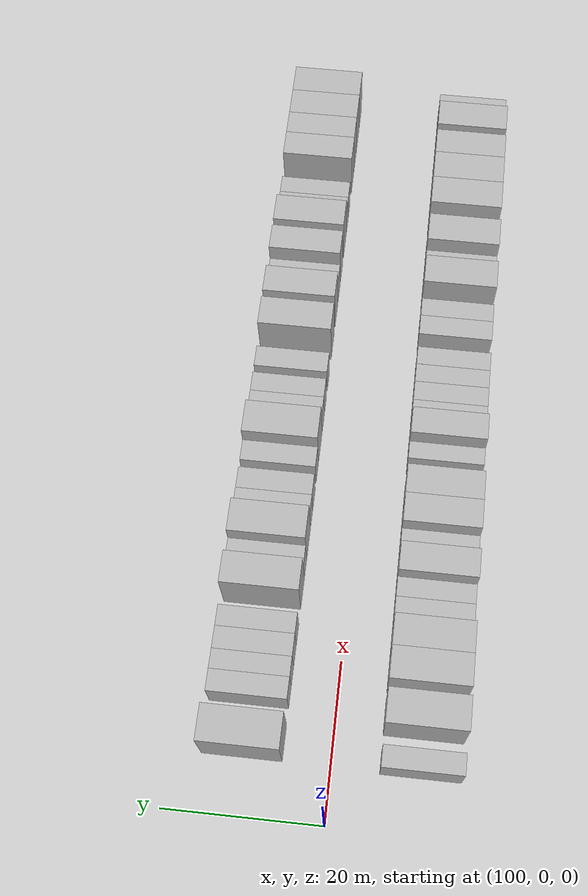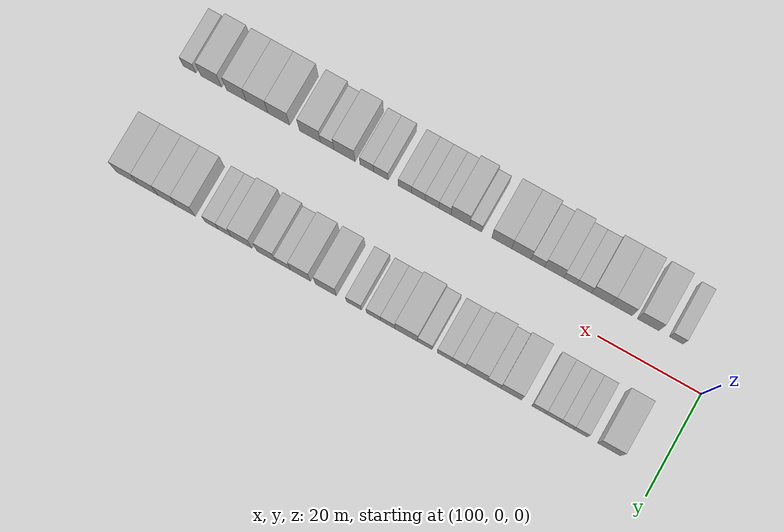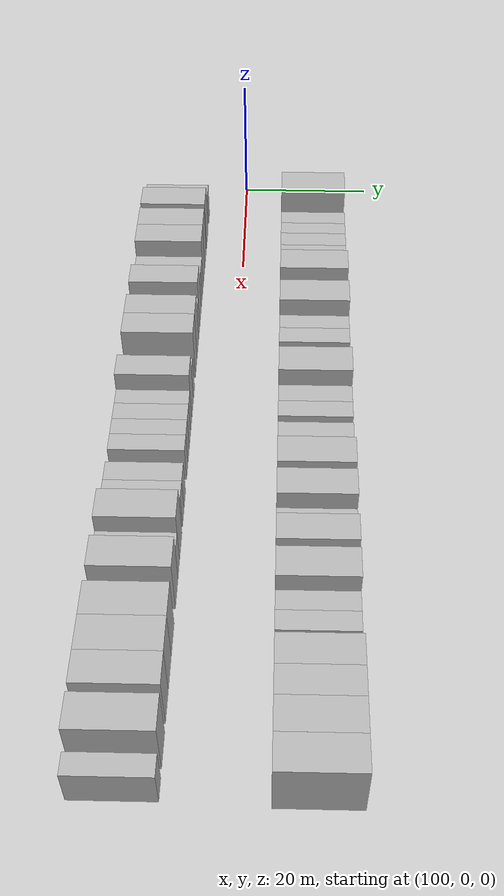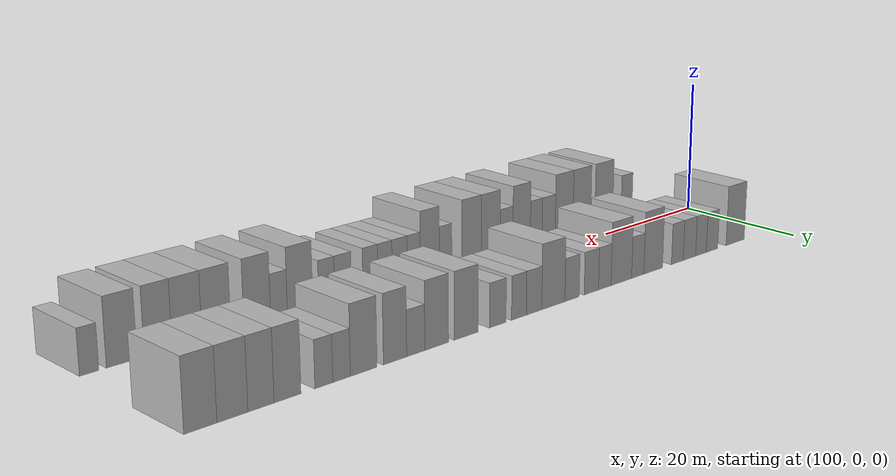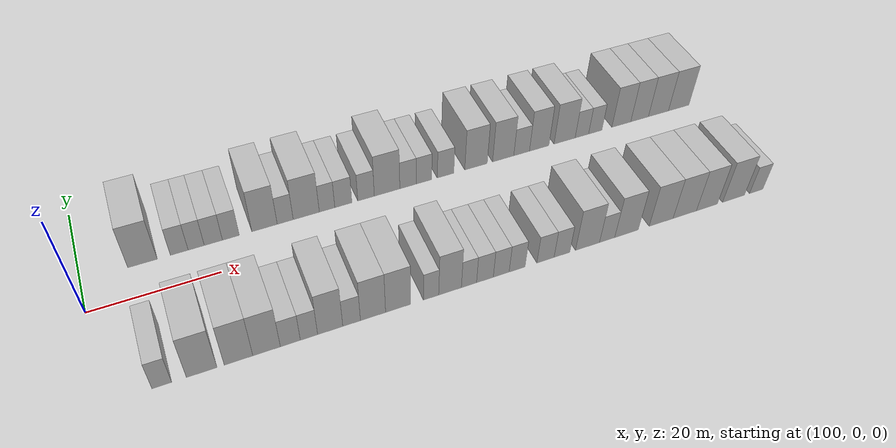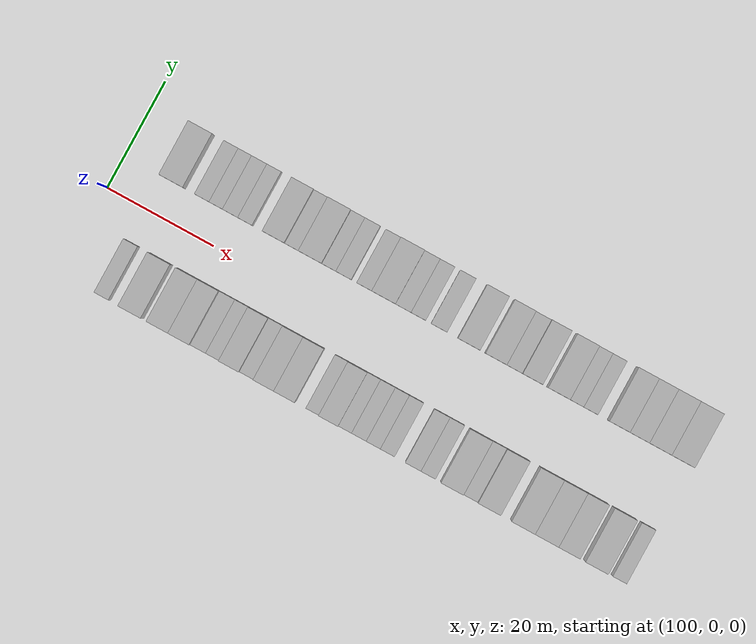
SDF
<sdf version="1.6">
 <world name="default">
  <model name="building_27">
   <static>1</static>
   <pose>109.2187 11.0000 0 0.000000 0.000000 1.570796</pose>
   <link name="link">
    <pose>0 0 4.50 0 0 0</pose>
    <collision name="collision"><geometry><box><size>10.0000 4.4427 9.0000</size></box></geometry></collision>
    <visual name="visual">
     <cast_shadows>0</cast_shadows>
     <geometry><box><size>10.0000 4.4427 9.0000</size></box></geometry>
     <material>
      <script>
       <uri>model://HANNAS_wall/materials/scripts</uri>
       <uri>model://HANNAS_wall/materials/textures</uri>
       <name>vrc/HANNAS_wall</name>
      </script>
     </material>
    </visual>
   </link>
  </model>
  <model name="building_28">
   <static>1</static>
   <pose>114.8032 11.0000 0 0.000000 0.000000 1.570796</pose>
   <link name="link">
    <pose>0 0 3.00 0 0 0</pose>
    <collision name="collision"><geometry><box><size>10.0000 2.7262 6.0000</size></box></geometry></collision>
    <visual name="visual">
     <cast_shadows>0</cast_shadows>
     <geometry><box><size>10.0000 2.7262 6.0000</size></box></geometry>
     <material>
      <script>
       <uri>model://HANNAS_wall/materials/scripts</uri>
       <uri>model://HANNAS_wall/materials/textures</uri>
       <name>vrc/HANNAS_wall</name>
      </script>
     </material>
    </visual>
   </link>
  </model>
  <model name="building_29">
   <static>1</static>
   <pose>117.4157 11.0000 0 0.000000 0.000000 1.570796</pose>
   <link name="link">
    <pose>0 0 3.00 0 0 0</pose>
    <collision name="collision"><geometry><box><size>10.0000 2.4989 6.0000</size></box></geometry></collision>
    <visual name="visual">
     <cast_shadows>0</cast_shadows>
     <geometry><box><size>10.0000 2.4989 6.0000</size></box></geometry>
     <material>
      <script>
       <uri>model://HANNAS_wall/materials/scripts</uri>
       <uri>model://HANNAS_wall/materials/textures</uri>
       <name>vrc/HANNAS_wall</name>
      </script>
     </material>
    </visual>
   </link>
  </model>
  <model name="building_30">
   <static>1</static>
   <pose>120.0866 11.0000 0 0.000000 0.000000 1.570796</pose>
   <link name="link">
    <pose>0 0 3.00 0 0 0</pose>
    <collision name="collision"><geometry><box><size>10.0000 2.8430 6.0000</size></box></geometry></collision>
    <visual name="visual">
     <cast_shadows>0</cast_shadows>
     <geometry><box><size>10.0000 2.8430 6.0000</size></box></geometry>
     <material>
      <script>
       <uri>model://HANNAS_wall/materials/scripts</uri>
       <uri>model://HANNAS_wall/materials/textures</uri>
       <name>vrc/HANNAS_wall</name>
      </script>
     </material>
    </visual>
   </link>
  </model>
  <model name="building_31">
   <static>1</static>
   <pose>122.8462 11.0000 0 0.000000 0.000000 1.570796</pose>
   <link name="link">
    <pose>0 0 3.00 0 0 0</pose>
    <collision name="collision"><geometry><box><size>10.0000 2.6762 6.0000</size></box></geometry></collision>
    <visual name="visual">
     <cast_shadows>0</cast_shadows>
     <geometry><box><size>10.0000 2.6762 6.0000</size></box></geometry>
     <material>
      <script>
       <uri>model://HANNAS_wall/materials/scripts</uri>
       <uri>model://HANNAS_wall/materials/textures</uri>
       <name>vrc/HANNAS_wall</name>
      </script>
     </material>
    </visual>
   </link>
  </model>
  <model name="building_32">
   <static>1</static>
   <pose>128.2343 11.0000 0 0.000000 0.000000 1.570796</pose>
   <link name="link">
    <pose>0 0 4.50 0 0 0</pose>
    <collision name="collision"><geometry><box><size>10.0000 4.0998 9.0000</size></box></geometry></collision>
    <visual name="visual">
     <cast_shadows>0</cast_shadows>
     <geometry><box><size>10.0000 4.0998 9.0000</size></box></geometry>
     <material>
      <script>
       <uri>model://HANNAS_wall/materials/scripts</uri>
       <uri>model://HANNAS_wall/materials/textures</uri>
       <name>vrc/HANNAS_wall</name>
      </script>
     </material>
    </visual>
   </link>
  </model>
  <model name="building_33">
   <static>1</static>
   <pose>131.5892 11.0000 0 0.000000 0.000000 1.570796</pose>
   <link name="link">
    <pose>0 0 3.00 0 0 0</pose>
    <collision name="collision"><geometry><box><size>10.0000 2.6101 6.0000</size></box></geometry></collision>
    <visual name="visual">
     <cast_shadows>0</cast_shadows>
     <geometry><box><size>10.0000 2.6101 6.0000</size></box></geometry>
     <material>
      <script>
       <uri>model://HANNAS_wall/materials/scripts</uri>
       <uri>model://HANNAS_wall/materials/textures</uri>
       <name>vrc/HANNAS_wall</name>
      </script>
     </material>
    </visual>
   </link>
  </model>
  <model name="building_34">
   <static>1</static>
   <pose>135.0570 11.0000 0 0.000000 0.000000 1.570796</pose>
   <link name="link">
    <pose>0 0 4.50 0 0 0</pose>
    <collision name="collision"><geometry><box><size>10.0000 4.3254 9.0000</size></box></geometry></collision>
    <visual name="visual">
     <cast_shadows>0</cast_shadows>
     <geometry><box><size>10.0000 4.3254 9.0000</size></box></geometry>
     <material>
      <script>
       <uri>model://HANNAS_wall/materials/scripts</uri>
       <uri>model://HANNAS_wall/materials/textures</uri>
       <name>vrc/HANNAS_wall</name>
      </script>
     </material>
    </visual>
   </link>
  </model>
  <model name="building_35">
   <static>1</static>
   <pose>138.5152 11.0000 0 0.000000 0.000000 1.570796</pose>
   <link name="link">
    <pose>0 0 3.00 0 0 0</pose>
    <collision name="collision"><geometry><box><size>10.0000 2.5910 6.0000</size></box></geometry></collision>
    <visual name="visual">
     <cast_shadows>0</cast_shadows>
     <geometry><box><size>10.0000 2.5910 6.0000</size></box></geometry>
     <material>
      <script>
       <uri>model://HANNAS_wall/materials/scripts</uri>
       <uri>model://HANNAS_wall/materials/textures</uri>
       <name>vrc/HANNAS_wall</name>
      </script>
     </material>
    </visual>
   </link>
  </model>
  <model name="building_36">
   <static>1</static>
   <pose>141.2565 11.0000 0 0.000000 0.000000 1.570796</pose>
   <link name="link">
    <pose>0 0 3.00 0 0 0</pose>
    <collision name="collision"><geometry><box><size>10.0000 2.8916 6.0000</size></box></geometry></collision>
    <visual name="visual">
     <cast_shadows>0</cast_shadows>
     <geometry><box><size>10.0000 2.8916 6.0000</size></box></geometry>
     <material>
      <script>
       <uri>model://HANNAS_wall/materials/scripts</uri>
       <uri>model://HANNAS_wall/materials/textures</uri>
       <name>vrc/HANNAS_wall</name>
      </script>
     </material>
    </visual>
   </link>
  </model>
  <model name="building_37">
   <static>1</static>
   <pose>145.1205 11.0000 0 0.000000 0.000000 1.570796</pose>
   <link name="link">
    <pose>0 0 3.00 0 0 0</pose>
    <collision name="collision"><geometry><box><size>10.0000 2.8364 6.0000</size></box></geometry></collision>
    <visual name="visual">
     <cast_shadows>0</cast_shadows>
     <geometry><box><size>10.0000 2.8364 6.0000</size></box></geometry>
     <material>
      <script>
       <uri>model://HANNAS_wall/materials/scripts</uri>
       <uri>model://HANNAS_wall/materials/textures</uri>
       <name>vrc/HANNAS_wall</name>
      </script>
     </material>
    </visual>
   </link>
  </model>
  <model name="building_38">
   <static>1</static>
   <pose>148.7555 11.0000 0 0.000000 0.000000 1.570796</pose>
   <link name="link">
    <pose>0 0 4.50 0 0 0</pose>
    <collision name="collision"><geometry><box><size>10.0000 4.4335 9.0000</size></box></geometry></collision>
    <visual name="visual">
     <cast_shadows>0</cast_shadows>
     <geometry><box><size>10.0000 4.4335 9.0000</size></box></geometry>
     <material>
      <script>
       <uri>model://HANNAS_wall/materials/scripts</uri>
       <uri>model://HANNAS_wall/materials/textures</uri>
       <name>vrc/HANNAS_wall</name>
      </script>
     </material>
    </visual>
   </link>
  </model>
  <model name="building_39">
   <static>1</static>
   <pose>152.4160 11.0000 0 0.000000 0.000000 1.570796</pose>
   <link name="link">
    <pose>0 0 3.00 0 0 0</pose>
    <collision name="collision"><geometry><box><size>10.0000 2.8877 6.0000</size></box></geometry></collision>
    <visual name="visual">
     <cast_shadows>0</cast_shadows>
     <geometry><box><size>10.0000 2.8877 6.0000</size></box></geometry>
     <material>
      <script>
       <uri>model://HANNAS_wall/materials/scripts</uri>
       <uri>model://HANNAS_wall/materials/textures</uri>
       <name>vrc/HANNAS_wall</name>
      </script>
     </material>
    </visual>
   </link>
  </model>
  <model name="building_40">
   <static>1</static>
   <pose>155.2328 11.0000 0 0.000000 0.000000 1.570796</pose>
   <link name="link">
    <pose>0 0 3.00 0 0 0</pose>
    <collision name="collision"><geometry><box><size>10.0000 2.7458 6.0000</size></box></geometry></collision>
    <visual name="visual">
     <cast_shadows>0</cast_shadows>
     <geometry><box><size>10.0000 2.7458 6.0000</size></box></geometry>
     <material>
      <script>
       <uri>model://HANNAS_wall/materials/scripts</uri>
       <uri>model://HANNAS_wall/materials/textures</uri>
       <name>vrc/HANNAS_wall</name>
      </script>
     </material>
    </visual>
   </link>
  </model>
  <model name="building_41">
   <static>1</static>
   <pose>159.0958 11.0000 0 0.000000 0.000000 1.570796</pose>
   <link name="link">
    <pose>0 0 3.00 0 0 0</pose>
    <collision name="collision"><geometry><box><size>10.0000 2.9803 6.0000</size></box></geometry></collision>
    <visual name="visual">
     <cast_shadows>0</cast_shadows>
     <geometry><box><size>10.0000 2.9803 6.0000</size></box></geometry>
     <material>
      <script>
       <uri>model://HANNAS_wall/materials/scripts</uri>
       <uri>model://HANNAS_wall/materials/textures</uri>
       <name>vrc/HANNAS_wall</name>
      </script>
     </material>
    </visual>
   </link>
  </model>
  <model name="building_42">
   <static>1</static>
   <pose>164.6466 11.0000 0 0.000000 0.000000 1.570796</pose>
   <link name="link">
    <pose>0 0 4.50 0 0 0</pose>
    <collision name="collision"><geometry><box><size>10.0000 4.1212 9.0000</size></box></geometry></collision>
    <visual name="visual">
     <cast_shadows>0</cast_shadows>
     <geometry><box><size>10.0000 4.1212 9.0000</size></box></geometry>
     <material>
      <script>
       <uri>model://HANNAS_wall/materials/scripts</uri>
       <uri>model://HANNAS_wall/materials/textures</uri>
       <name>vrc/HANNAS_wall</name>
      </script>
     </material>
    </visual>
   </link>
  </model>
  <model name="building_43">
   <static>1</static>
   <pose>169.6876 11.0000 0 0.000000 0.000000 1.570796</pose>
   <link name="link">
    <pose>0 0 4.50 0 0 0</pose>
    <collision name="collision"><geometry><box><size>10.0000 3.9610 9.0000</size></box></geometry></collision>
    <visual name="visual">
     <cast_shadows>0</cast_shadows>
     <geometry><box><size>10.0000 3.9610 9.0000</size></box></geometry>
     <material>
      <script>
       <uri>model://HANNAS_wall/materials/scripts</uri>
       <uri>model://HANNAS_wall/materials/textures</uri>
       <name>vrc/HANNAS_wall</name>
      </script>
     </material>
    </visual>
   </link>
  </model>
  <model name="building_44">
   <static>1</static>
   <pose>173.1504 11.0000 0 0.000000 0.000000 1.570796</pose>
   <link name="link">
    <pose>0 0 3.00 0 0 0</pose>
    <collision name="collision"><geometry><box><size>10.0000 2.9644 6.0000</size></box></geometry></collision>
    <visual name="visual">
     <cast_shadows>0</cast_shadows>
     <geometry><box><size>10.0000 2.9644 6.0000</size></box></geometry>
     <material>
      <script>
       <uri>model://HANNAS_wall/materials/scripts</uri>
       <uri>model://HANNAS_wall/materials/textures</uri>
       <name>vrc/HANNAS_wall</name>
      </script>
     </material>
    </visual>
   </link>
  </model>
  <model name="building_45">
   <static>1</static>
   <pose>176.4920 11.0000 0 0.000000 0.000000 1.570796</pose>
   <link name="link">
    <pose>0 0 4.50 0 0 0</pose>
    <collision name="collision"><geometry><box><size>10.0000 3.7188 9.0000</size></box></geometry></collision>
    <visual name="visual">
     <cast_shadows>0</cast_shadows>
     <geometry><box><size>10.0000 3.7188 9.0000</size></box></geometry>
     <material>
      <script>
       <uri>model://HANNAS_wall/materials/scripts</uri>
       <uri>model://HANNAS_wall/materials/textures</uri>
       <name>vrc/HANNAS_wall</name>
      </script>
     </material>
    </visual>
   </link>
  </model>
  <model name="building_46">
   <static>1</static>
   <pose>181.4032 11.0000 0 0.000000 0.000000 1.570796</pose>
   <link name="link">
    <pose>0 0 4.50 0 0 0</pose>
    <collision name="collision"><geometry><box><size>10.0000 4.1037 9.0000</size></box></geometry></collision>
    <visual name="visual">
     <cast_shadows>0</cast_shadows>
     <geometry><box><size>10.0000 4.1037 9.0000</size></box></geometry>
     <material>
      <script>
       <uri>model://HANNAS_wall/materials/scripts</uri>
       <uri>model://HANNAS_wall/materials/textures</uri>
       <name>vrc/HANNAS_wall</name>
      </script>
     </material>
    </visual>
   </link>
  </model>
  <model name="building_47">
   <static>1</static>
   <pose>184.7760 11.0000 0 0.000000 0.000000 1.570796</pose>
   <link name="link">
    <pose>0 0 3.00 0 0 0</pose>
    <collision name="collision"><geometry><box><size>10.0000 2.6418 6.0000</size></box></geometry></collision>
    <visual name="visual">
     <cast_shadows>0</cast_shadows>
     <geometry><box><size>10.0000 2.6418 6.0000</size></box></geometry>
     <material>
      <script>
       <uri>model://HANNAS_wall/materials/scripts</uri>
       <uri>model://HANNAS_wall/materials/textures</uri>
       <name>vrc/HANNAS_wall</name>
      </script>
     </material>
    </visual>
   </link>
  </model>
  <model name="building_48">
   <static>1</static>
   <pose>187.4172 11.0000 0 0.000000 0.000000 1.570796</pose>
   <link name="link">
    <pose>0 0 3.00 0 0 0</pose>
    <collision name="collision"><geometry><box><size>10.0000 2.6407 6.0000</size></box></geometry></collision>
    <visual name="visual">
     <cast_shadows>0</cast_shadows>
     <geometry><box><size>10.0000 2.6407 6.0000</size></box></geometry>
     <material>
      <script>
       <uri>model://HANNAS_wall/materials/scripts</uri>
       <uri>model://HANNAS_wall/materials/textures</uri>
       <name>vrc/HANNAS_wall</name>
      </script>
     </material>
    </visual>
   </link>
  </model>
  <model name="building_49">
   <static>1</static>
   <pose>192.6447 11.0000 0 0.000000 0.000000 1.570796</pose>
   <link name="link">
    <pose>0 0 4.50 0 0 0</pose>
    <collision name="collision"><geometry><box><size>10.0000 3.8143 9.0000</size></box></geometry></collision>
    <visual name="visual">
     <cast_shadows>0</cast_shadows>
     <geometry><box><size>10.0000 3.8143 9.0000</size></box></geometry>
     <material>
      <script>
       <uri>model://HANNAS_wall/materials/scripts</uri>
       <uri>model://HANNAS_wall/materials/textures</uri>
       <name>vrc/HANNAS_wall</name>
      </script>
     </material>
    </visual>
   </link>
  </model>
  <model name="building_50">
   <static>1</static>
   <pose>196.3565 11.0000 0 0.000000 0.000000 1.570796</pose>
   <link name="link">
    <pose>0 0 4.50 0 0 0</pose>
    <collision name="collision"><geometry><box><size>10.0000 3.6092 9.0000</size></box></geometry></collision>
    <visual name="visual">
     <cast_shadows>0</cast_shadows>
     <geometry><box><size>10.0000 3.6092 9.0000</size></box></geometry>
     <material>
      <script>
       <uri>model://HANNAS_wall/materials/scripts</uri>
       <uri>model://HANNAS_wall/materials/textures</uri>
       <name>vrc/HANNAS_wall</name>
      </script>
     </material>
    </visual>
   </link>
  </model>
  <model name="building_51">
   <static>1</static>
   <pose>200.2286 11.0000 0 0.000000 0.000000 1.570796</pose>
   <link name="link">
    <pose>0 0 4.50 0 0 0</pose>
    <collision name="collision"><geometry><box><size>10.0000 4.1352 9.0000</size></box></geometry></collision>
    <visual name="visual">
     <cast_shadows>0</cast_shadows>
     <geometry><box><size>10.0000 4.1352 9.0000</size></box></geometry>
     <material>
      <script>
       <uri>model://HANNAS_wall/materials/scripts</uri>
       <uri>model://HANNAS_wall/materials/textures</uri>
       <name>vrc/HANNAS_wall</name>
      </script>
     </material>
    </visual>
   </link>
  </model>
  <model name="building_52">
   <static>1</static>
   <pose>204.4438 11.0000 0 0.000000 0.000000 1.570796</pose>
   <link name="link">
    <pose>0 0 4.50 0 0 0</pose>
    <collision name="collision"><geometry><box><size>10.0000 4.2951 9.0000</size></box></geometry></collision>
    <visual name="visual">
     <cast_shadows>0</cast_shadows>
     <geometry><box><size>10.0000 4.2951 9.0000</size></box></geometry>
     <material>
      <script>
       <uri>model://HANNAS_wall/materials/scripts</uri>
       <uri>model://HANNAS_wall/materials/textures</uri>
       <name>vrc/HANNAS_wall</name>
      </script>
     </material>
    </visual>
   </link>
  </model>
  <model name="building_78">
   <static>1</static>
   <pose>108.0930 -11.0000 0 0.000000 0.000000 1.570796</pose>
   <link name="link">
    <pose>0 0 3.00 0 0 0</pose>
    <collision name="collision"><geometry><box><size>10.0000 2.6696 6.0000</size></box></geometry></collision>
    <visual name="visual">
     <cast_shadows>0</cast_shadows>
     <geometry><box><size>10.0000 2.6696 6.0000</size></box></geometry>
     <material>
      <script>
       <uri>model://HANNAS_wall/materials/scripts</uri>
       <uri>model://HANNAS_wall/materials/textures</uri>
       <name>vrc/HANNAS_wall</name>
      </script>
     </material>
    </visual>
   </link>
  </model>
  <model name="building_79">
   <static>1</static>
   <pose>113.5479 -11.0000 0 0.000000 0.000000 1.570796</pose>
   <link name="link">
    <pose>0 0 4.50 0 0 0</pose>
    <collision name="collision"><geometry><box><size>10.0000 4.2402 9.0000</size></box></geometry></collision>
    <visual name="visual">
     <cast_shadows>0</cast_shadows>
     <geometry><box><size>10.0000 4.2402 9.0000</size></box></geometry>
     <material>
      <script>
       <uri>model://HANNAS_wall/materials/scripts</uri>
       <uri>model://HANNAS_wall/materials/textures</uri>
       <name>vrc/HANNAS_wall</name>
      </script>
     </material>
    </visual>
   </link>
  </model>
  <model name="building_80">
   <static>1</static>
   <pose>118.6877 -11.0000 0 0.000000 0.000000 1.570796</pose>
   <link name="link">
    <pose>0 0 4.50 0 0 0</pose>
    <collision name="collision"><geometry><box><size>10.0000 4.0394 9.0000</size></box></geometry></collision>
    <visual name="visual">
     <cast_shadows>0</cast_shadows>
     <geometry><box><size>10.0000 4.0394 9.0000</size></box></geometry>
     <material>
      <script>
       <uri>model://HANNAS_wall/materials/scripts</uri>
       <uri>model://HANNAS_wall/materials/textures</uri>
       <name>vrc/HANNAS_wall</name>
      </script>
     </material>
    </visual>
   </link>
  </model>
  <model name="building_81">
   <static>1</static>
   <pose>122.6841 -11.0000 0 0.000000 0.000000 1.570796</pose>
   <link name="link">
    <pose>0 0 4.50 0 0 0</pose>
    <collision name="collision"><geometry><box><size>10.0000 3.9535 9.0000</size></box></geometry></collision>
    <visual name="visual">
     <cast_shadows>0</cast_shadows>
     <geometry><box><size>10.0000 3.9535 9.0000</size></box></geometry>
     <material>
      <script>
       <uri>model://HANNAS_wall/materials/scripts</uri>
       <uri>model://HANNAS_wall/materials/textures</uri>
       <name>vrc/HANNAS_wall</name>
      </script>
     </material>
    </visual>
   </link>
  </model>
  <model name="building_82">
   <static>1</static>
   <pose>126.1131 -11.0000 0 0.000000 0.000000 1.570796</pose>
   <link name="link">
    <pose>0 0 3.00 0 0 0</pose>
    <collision name="collision"><geometry><box><size>10.0000 2.9044 6.0000</size></box></geometry></collision>
    <visual name="visual">
     <cast_shadows>0</cast_shadows>
     <geometry><box><size>10.0000 2.9044 6.0000</size></box></geometry>
     <material>
      <script>
       <uri>model://HANNAS_wall/materials/scripts</uri>
       <uri>model://HANNAS_wall/materials/textures</uri>
       <name>vrc/HANNAS_wall</name>
      </script>
     </material>
    </visual>
   </link>
  </model>
  <model name="building_83">
   <static>1</static>
   <pose>128.8361 -11.0000 0 0.000000 0.000000 1.570796</pose>
   <link name="link">
    <pose>0 0 3.00 0 0 0</pose>
    <collision name="collision"><geometry><box><size>10.0000 2.5417 6.0000</size></box></geometry></collision>
    <visual name="visual">
     <cast_shadows>0</cast_shadows>
     <geometry><box><size>10.0000 2.5417 6.0000</size></box></geometry>
     <material>
      <script>
       <uri>model://HANNAS_wall/materials/scripts</uri>
       <uri>model://HANNAS_wall/materials/textures</uri>
       <name>vrc/HANNAS_wall</name>
      </script>
     </material>
    </visual>
   </link>
  </model>
  <model name="building_84">
   <static>1</static>
   <pose>131.9829 -11.0000 0 0.000000 0.000000 1.570796</pose>
   <link name="link">
    <pose>0 0 4.50 0 0 0</pose>
    <collision name="collision"><geometry><box><size>10.0000 3.7520 9.0000</size></box></geometry></collision>
    <visual name="visual">
     <cast_shadows>0</cast_shadows>
     <geometry><box><size>10.0000 3.7520 9.0000</size></box></geometry>
     <material>
      <script>
       <uri>model://HANNAS_wall/materials/scripts</uri>
       <uri>model://HANNAS_wall/materials/textures</uri>
       <name>vrc/HANNAS_wall</name>
      </script>
     </material>
    </visual>
   </link>
  </model>
  <model name="building_85">
   <static>1</static>
   <pose>135.1890 -11.0000 0 0.000000 0.000000 1.570796</pose>
   <link name="link">
    <pose>0 0 3.00 0 0 0</pose>
    <collision name="collision"><geometry><box><size>10.0000 2.6601 6.0000</size></box></geometry></collision>
    <visual name="visual">
     <cast_shadows>0</cast_shadows>
     <geometry><box><size>10.0000 2.6601 6.0000</size></box></geometry>
     <material>
      <script>
       <uri>model://HANNAS_wall/materials/scripts</uri>
       <uri>model://HANNAS_wall/materials/textures</uri>
       <name>vrc/HANNAS_wall</name>
      </script>
     </material>
    </visual>
   </link>
  </model>
  <model name="building_86">
   <static>1</static>
   <pose>138.4405 -11.0000 0 0.000000 0.000000 1.570796</pose>
   <link name="link">
    <pose>0 0 4.50 0 0 0</pose>
    <collision name="collision"><geometry><box><size>10.0000 3.8428 9.0000</size></box></geometry></collision>
    <visual name="visual">
     <cast_shadows>0</cast_shadows>
     <geometry><box><size>10.0000 3.8428 9.0000</size></box></geometry>
     <material>
      <script>
       <uri>model://HANNAS_wall/materials/scripts</uri>
       <uri>model://HANNAS_wall/materials/textures</uri>
       <name>vrc/HANNAS_wall</name>
      </script>
     </material>
    </visual>
   </link>
  </model>
  <model name="building_87">
   <static>1</static>
   <pose>142.3143 -11.0000 0 0.000000 0.000000 1.570796</pose>
   <link name="link">
    <pose>0 0 4.50 0 0 0</pose>
    <collision name="collision"><geometry><box><size>10.0000 3.9048 9.0000</size></box></geometry></collision>
    <visual name="visual">
     <cast_shadows>0</cast_shadows>
     <geometry><box><size>10.0000 3.9048 9.0000</size></box></geometry>
     <material>
      <script>
       <uri>model://HANNAS_wall/materials/scripts</uri>
       <uri>model://HANNAS_wall/materials/textures</uri>
       <name>vrc/HANNAS_wall</name>
      </script>
     </material>
    </visual>
   </link>
  </model>
  <model name="building_88">
   <static>1</static>
   <pose>147.4749 -11.0000 0 0.000000 0.000000 1.570796</pose>
   <link name="link">
    <pose>0 0 3.00 0 0 0</pose>
    <collision name="collision"><geometry><box><size>10.0000 2.4166 6.0000</size></box></geometry></collision>
    <visual name="visual">
     <cast_shadows>0</cast_shadows>
     <geometry><box><size>10.0000 2.4166 6.0000</size></box></geometry>
     <material>
      <script>
       <uri>model://HANNAS_wall/materials/scripts</uri>
       <uri>model://HANNAS_wall/materials/textures</uri>
       <name>vrc/HANNAS_wall</name>
      </script>
     </material>
    </visual>
   </link>
  </model>
  <model name="building_89">
   <static>1</static>
   <pose>150.5029 -11.0000 0 0.000000 0.000000 1.570796</pose>
   <link name="link">
    <pose>0 0 4.50 0 0 0</pose>
    <collision name="collision"><geometry><box><size>10.0000 3.6392 9.0000</size></box></geometry></collision>
    <visual name="visual">
     <cast_shadows>0</cast_shadows>
     <geometry><box><size>10.0000 3.6392 9.0000</size></box></geometry>
     <material>
      <script>
       <uri>model://HANNAS_wall/materials/scripts</uri>
       <uri>model://HANNAS_wall/materials/textures</uri>
       <name>vrc/HANNAS_wall</name>
      </script>
     </material>
    </visual>
   </link>
  </model>
  <model name="building_90">
   <static>1</static>
   <pose>153.5551 -11.0000 0 0.000000 0.000000 1.570796</pose>
   <link name="link">
    <pose>0 0 3.00 0 0 0</pose>
    <collision name="collision"><geometry><box><size>10.0000 2.4653 6.0000</size></box></geometry></collision>
    <visual name="visual">
     <cast_shadows>0</cast_shadows>
     <geometry><box><size>10.0000 2.4653 6.0000</size></box></geometry>
     <material>
      <script>
       <uri>model://HANNAS_wall/materials/scripts</uri>
       <uri>model://HANNAS_wall/materials/textures</uri>
       <name>vrc/HANNAS_wall</name>
      </script>
     </material>
    </visual>
   </link>
  </model>
  <model name="building_91">
   <static>1</static>
   <pose>156.1609 -11.0000 0 0.000000 0.000000 1.570796</pose>
   <link name="link">
    <pose>0 0 3.00 0 0 0</pose>
    <collision name="collision"><geometry><box><size>10.0000 2.7463 6.0000</size></box></geometry></collision>
    <visual name="visual">
     <cast_shadows>0</cast_shadows>
     <geometry><box><size>10.0000 2.7463 6.0000</size></box></geometry>
     <material>
      <script>
       <uri>model://HANNAS_wall/materials/scripts</uri>
       <uri>model://HANNAS_wall/materials/textures</uri>
       <name>vrc/HANNAS_wall</name>
      </script>
     </material>
    </visual>
   </link>
  </model>
  <model name="building_92">
   <static>1</static>
   <pose>158.8476 -11.0000 0 0.000000 0.000000 1.570796</pose>
   <link name="link">
    <pose>0 0 3.00 0 0 0</pose>
    <collision name="collision"><geometry><box><size>10.0000 2.6272 6.0000</size></box></geometry></collision>
    <visual name="visual">
     <cast_shadows>0</cast_shadows>
     <geometry><box><size>10.0000 2.6272 6.0000</size></box></geometry>
     <material>
      <script>
       <uri>model://HANNAS_wall/materials/scripts</uri>
       <uri>model://HANNAS_wall/materials/textures</uri>
       <name>vrc/HANNAS_wall</name>
      </script>
     </material>
    </visual>
   </link>
  </model>
  <model name="building_93">
   <static>1</static>
   <pose>161.4934 -11.0000 0 0.000000 0.000000 1.570796</pose>
   <link name="link">
    <pose>0 0 3.00 0 0 0</pose>
    <collision name="collision"><geometry><box><size>10.0000 2.6642 6.0000</size></box></geometry></collision>
    <visual name="visual">
     <cast_shadows>0</cast_shadows>
     <geometry><box><size>10.0000 2.6642 6.0000</size></box></geometry>
     <material>
      <script>
       <uri>model://HANNAS_wall/materials/scripts</uri>
       <uri>model://HANNAS_wall/materials/textures</uri>
       <name>vrc/HANNAS_wall</name>
      </script>
     </material>
    </visual>
   </link>
  </model>
  <model name="building_94">
   <static>1</static>
   <pose>166.2900 -11.0000 0 0.000000 0.000000 1.570796</pose>
   <link name="link">
    <pose>0 0 3.00 0 0 0</pose>
    <collision name="collision"><geometry><box><size>10.0000 2.9291 6.0000</size></box></geometry></collision>
    <visual name="visual">
     <cast_shadows>0</cast_shadows>
     <geometry><box><size>10.0000 2.9291 6.0000</size></box></geometry>
     <material>
      <script>
       <uri>model://HANNAS_wall/materials/scripts</uri>
       <uri>model://HANNAS_wall/materials/textures</uri>
       <name>vrc/HANNAS_wall</name>
      </script>
     </material>
    </visual>
   </link>
  </model>
  <model name="building_95">
   <static>1</static>
   <pose>169.1063 -11.0000 0 0.000000 0.000000 1.570796</pose>
   <link name="link">
    <pose>0 0 3.00 0 0 0</pose>
    <collision name="collision"><geometry><box><size>10.0000 2.7034 6.0000</size></box></geometry></collision>
    <visual name="visual">
     <cast_shadows>0</cast_shadows>
     <geometry><box><size>10.0000 2.7034 6.0000</size></box></geometry>
     <material>
      <script>
       <uri>model://HANNAS_wall/materials/scripts</uri>
       <uri>model://HANNAS_wall/materials/textures</uri>
       <name>vrc/HANNAS_wall</name>
      </script>
     </material>
    </visual>
   </link>
  </model>
  <model name="building_96">
   <static>1</static>
   <pose>173.5607 -11.0000 0 0.000000 0.000000 1.570796</pose>
   <link name="link">
    <pose>0 0 4.50 0 0 0</pose>
    <collision name="collision"><geometry><box><size>10.0000 4.2055 9.0000</size></box></geometry></collision>
    <visual name="visual">
     <cast_shadows>0</cast_shadows>
     <geometry><box><size>10.0000 4.2055 9.0000</size></box></geometry>
     <material>
      <script>
       <uri>model://HANNAS_wall/materials/scripts</uri>
       <uri>model://HANNAS_wall/materials/textures</uri>
       <name>vrc/HANNAS_wall</name>
      </script>
     </material>
    </visual>
   </link>
  </model>
  <model name="building_97">
   <static>1</static>
   <pose>177.0110 -11.0000 0 0.000000 0.000000 1.570796</pose>
   <link name="link">
    <pose>0 0 3.00 0 0 0</pose>
    <collision name="collision"><geometry><box><size>10.0000 2.6952 6.0000</size></box></geometry></collision>
    <visual name="visual">
     <cast_shadows>0</cast_shadows>
     <geometry><box><size>10.0000 2.6952 6.0000</size></box></geometry>
     <material>
      <script>
       <uri>model://HANNAS_wall/materials/scripts</uri>
       <uri>model://HANNAS_wall/materials/textures</uri>
       <name>vrc/HANNAS_wall</name>
      </script>
     </material>
    </visual>
   </link>
  </model>
  <model name="building_98">
   <static>1</static>
   <pose>180.4730 -11.0000 0 0.000000 0.000000 1.570796</pose>
   <link name="link">
    <pose>0 0 4.50 0 0 0</pose>
    <collision name="collision"><geometry><box><size>10.0000 4.2288 9.0000</size></box></geometry></collision>
    <visual name="visual">
     <cast_shadows>0</cast_shadows>
     <geometry><box><size>10.0000 4.2288 9.0000</size></box></geometry>
     <material>
      <script>
       <uri>model://HANNAS_wall/materials/scripts</uri>
       <uri>model://HANNAS_wall/materials/textures</uri>
       <name>vrc/HANNAS_wall</name>
      </script>
     </material>
    </visual>
   </link>
  </model>
  <model name="building_99">
   <static>1</static>
   <pose>186.7757 -11.0000 0 0.000000 0.000000 1.570796</pose>
   <link name="link">
    <pose>0 0 4.50 0 0 0</pose>
    <collision name="collision"><geometry><box><size>10.0000 4.3765 9.0000</size></box></geometry></collision>
    <visual name="visual">
     <cast_shadows>0</cast_shadows>
     <geometry><box><size>10.0000 4.3765 9.0000</size></box></geometry>
     <material>
      <script>
       <uri>model://HANNAS_wall/materials/scripts</uri>
       <uri>model://HANNAS_wall/materials/textures</uri>
       <name>vrc/HANNAS_wall</name>
      </script>
     </material>
    </visual>
   </link>
  </model>
  <model name="building_100">
   <static>1</static>
   <pose>191.1532 -11.0000 0 0.000000 0.000000 1.570796</pose>
   <link name="link">
    <pose>0 0 4.50 0 0 0</pose>
    <collision name="collision"><geometry><box><size>10.0000 4.3786 9.0000</size></box></geometry></collision>
    <visual name="visual">
     <cast_shadows>0</cast_shadows>
     <geometry><box><size>10.0000 4.3786 9.0000</size></box></geometry>
     <material>
      <script>
       <uri>model://HANNAS_wall/materials/scripts</uri>
       <uri>model://HANNAS_wall/materials/textures</uri>
       <name>vrc/HANNAS_wall</name>
      </script>
     </material>
    </visual>
   </link>
  </model>
  <model name="building_101">
   <static>1</static>
   <pose>195.3318 -11.0000 0 0.000000 0.000000 1.570796</pose>
   <link name="link">
    <pose>0 0 4.50 0 0 0</pose>
    <collision name="collision"><geometry><box><size>10.0000 3.9785 9.0000</size></box></geometry></collision>
    <visual name="visual">
     <cast_shadows>0</cast_shadows>
     <geometry><box><size>10.0000 3.9785 9.0000</size></box></geometry>
     <material>
      <script>
       <uri>model://HANNAS_wall/materials/scripts</uri>
       <uri>model://HANNAS_wall/materials/textures</uri>
       <name>vrc/HANNAS_wall</name>
      </script>
     </material>
    </visual>
   </link>
  </model>
  <model name="building_102">
   <static>1</static>
   <pose>200.4328 -11.0000 0 0.000000 0.000000 1.570796</pose>
   <link name="link">
    <pose>0 0 4.50 0 0 0</pose>
    <collision name="collision"><geometry><box><size>10.0000 4.2236 9.0000</size></box></geometry></collision>
    <visual name="visual">
     <cast_shadows>0</cast_shadows>
     <geometry><box><size>10.0000 4.2236 9.0000</size></box></geometry>
     <material>
      <script>
       <uri>model://HANNAS_wall/materials/scripts</uri>
       <uri>model://HANNAS_wall/materials/textures</uri>
       <name>vrc/HANNAS_wall</name>
      </script>
     </material>
    </visual>
   </link>
  </model>
  <model name="building_103">
   <static>1</static>
   <pose>204.8468 -11.0000 0 0.000000 0.000000 1.570796</pose>
   <link name="link">
    <pose>0 0 3.00 0 0 0</pose>
    <collision name="collision"><geometry><box><size>10.0000 2.6044 6.0000</size></box></geometry></collision>
    <visual name="visual">
     <cast_shadows>0</cast_shadows>
     <geometry><box><size>10.0000 2.6044 6.0000</size></box></geometry>
     <material>
      <script>
       <uri>model://HANNAS_wall/materials/scripts</uri>
       <uri>model://HANNAS_wall/materials/textures</uri>
       <name>vrc/HANNAS_wall</name>
      </script>
     </material>
    </visual>
   </link>
  </model>
 </world>
</sdf>
